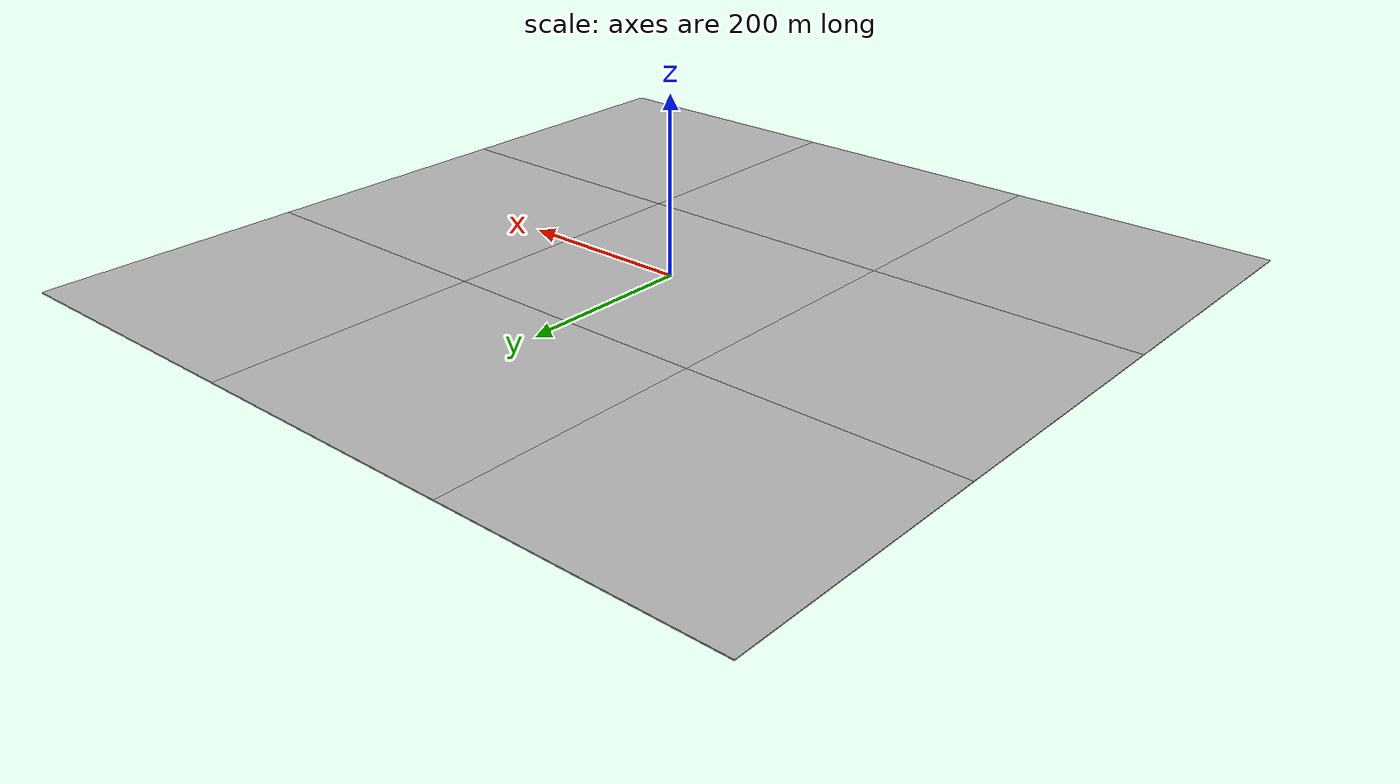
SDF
<sdf version='1.7'>
<model name='map_satellite_36.0831592_140.07968_700_700'>
  <static>true</static>
  <link name='link'>
    <collision name='collision'>
      <pose>0 0 -0.5 0 0 0</pose>
      <geometry>
        <box>
          <size>926.604 926.604 1</size>
        </box>
      </geometry>
    </collision>
    <visual name='visual0_0'>
      <pose>-308.868 308.868 -0.5 0 0 1.5708</pose>
      <geometry>
        <box>
          <size>308.868 308.868 1</size>
        </box>
      </geometry>
      <material>
        <script>
          <uri>model://map_satellite_36.0831592_140.07968_700_700/materials/scripts</uri>
          <uri>model://map_satellite_36.0831592_140.07968_700_700/materials/textures</uri>
          <name>map_satellite_36.0831592_140.07968_700_700/0_0</name>
        </script>
      </material>
    </visual>
    <visual name='visual0_1'>
      <pose>0 308.868 -0.5 0 0 1.5708</pose>
      <geometry>
        <box>
          <size>308.868 308.868 1</size>
        </box>
      </geometry>
      <material>
        <script>
          <uri>model://map_satellite_36.0831592_140.07968_700_700/materials/scripts</uri>
          <uri>model://map_satellite_36.0831592_140.07968_700_700/materials/textures</uri>
          <name>map_satellite_36.0831592_140.07968_700_700/0_1</name>
        </script>
      </material>
    </visual>
    <visual name='visual0_2'>
      <pose>308.868 308.868 -0.5 0 0 1.5708</pose>
      <geometry>
        <box>
          <size>308.868 308.868 1</size>
        </box>
      </geometry>
      <material>
        <script>
          <uri>model://map_satellite_36.0831592_140.07968_700_700/materials/scripts</uri>
          <uri>model://map_satellite_36.0831592_140.07968_700_700/materials/textures</uri>
          <name>map_satellite_36.0831592_140.07968_700_700/0_2</name>
        </script>
      </material>
    </visual>
    <visual name='visual1_0'>
      <pose>-308.868 0 -0.5 0 0 1.5708</pose>
      <geometry>
        <box>
          <size>308.868 308.868 1</size>
        </box>
      </geometry>
      <material>
        <script>
          <uri>model://map_satellite_36.0831592_140.07968_700_700/materials/scripts</uri>
          <uri>model://map_satellite_36.0831592_140.07968_700_700/materials/textures</uri>
          <name>map_satellite_36.0831592_140.07968_700_700/1_0</name>
        </script>
      </material>
    </visual>
    <visual name='visual1_1'>
      <pose>0 0 -0.5 0 0 1.5708</pose>
      <geometry>
        <box>
          <size>308.868 308.868 1</size>
        </box>
      </geometry>
      <material>
        <script>
          <uri>model://map_satellite_36.0831592_140.07968_700_700/materials/scripts</uri>
          <uri>model://map_satellite_36.0831592_140.07968_700_700/materials/textures</uri>
          <name>map_satellite_36.0831592_140.07968_700_700/1_1</name>
        </script>
      </material>
    </visual>
    <visual name='visual1_2'>
      <pose>308.868 0 -0.5 0 0 1.5708</pose>
      <geometry>
        <box>
          <size>308.868 308.868 1</size>
        </box>
      </geometry>
      <material>
        <script>
          <uri>model://map_satellite_36.0831592_140.07968_700_700/materials/scripts</uri>
          <uri>model://map_satellite_36.0831592_140.07968_700_700/materials/textures</uri>
          <name>map_satellite_36.0831592_140.07968_700_700/1_2</name>
        </script>
      </material>
    </visual>
    <visual name='visual2_0'>
      <pose>-308.868 -308.868 -0.5 0 0 1.5708</pose>
      <geometry>
        <box>
          <size>308.868 308.868 1</size>
        </box>
      </geometry>
      <material>
        <script>
          <uri>model://map_satellite_36.0831592_140.07968_700_700/materials/scripts</uri>
          <uri>model://map_satellite_36.0831592_140.07968_700_700/materials/textures</uri>
          <name>map_satellite_36.0831592_140.07968_700_700/2_0</name>
        </script>
      </material>
    </visual>
    <visual name='visual2_1'>
      <pose>0 -308.868 -0.5 0 0 1.5708</pose>
      <geometry>
        <box>
          <size>308.868 308.868 1</size>
        </box>
      </geometry>
      <material>
        <script>
          <uri>model://map_satellite_36.0831592_140.07968_700_700/materials/scripts</uri>
          <uri>model://map_satellite_36.0831592_140.07968_700_700/materials/textures</uri>
          <name>map_satellite_36.0831592_140.07968_700_700/2_1</name>
        </script>
      </material>
    </visual>
    <visual name='visual2_2'>
      <pose>308.868 -308.868 -0.5 0 0 1.5708</pose>
      <geometry>
        <box>
          <size>308.868 308.868 1</size>
        </box>
      </geometry>
      <material>
        <script>
          <uri>model://map_satellite_36.0831592_140.07968_700_700/materials/scripts</uri>
          <uri>model://map_satellite_36.0831592_140.07968_700_700/materials/textures</uri>
          <name>map_satellite_36.0831592_140.07968_700_700/2_2</name>
        </script>
      </material>
    </visual>
  </link>
</model>
</sdf>
